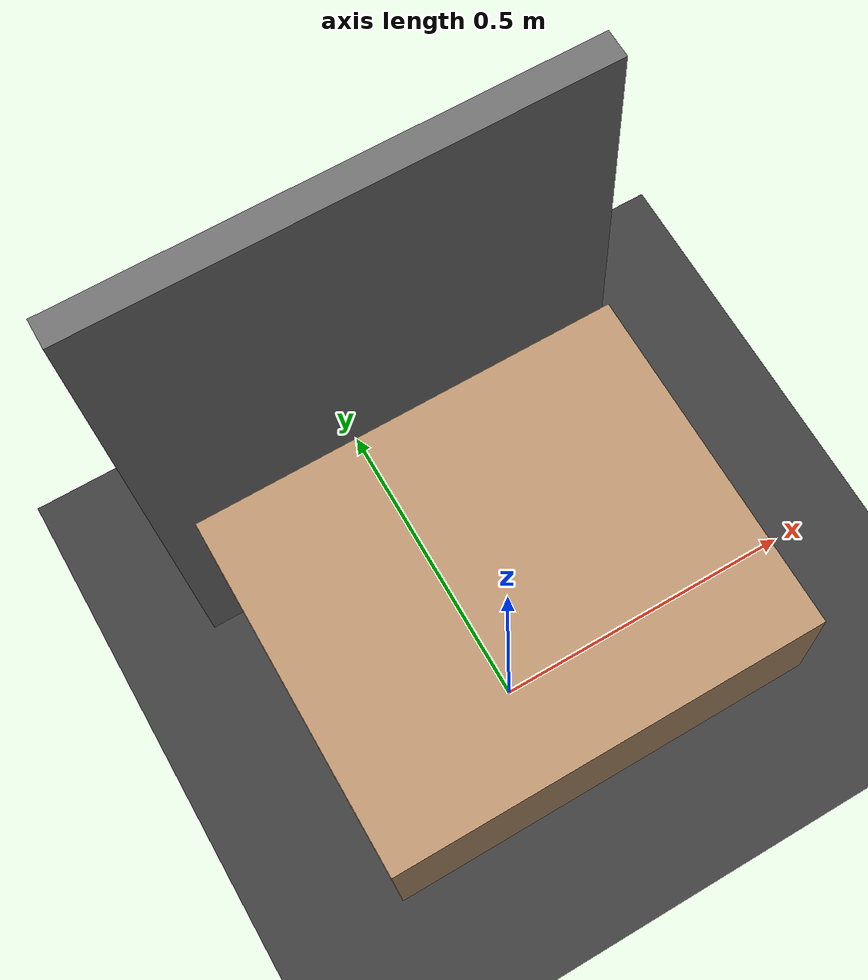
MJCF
<mujoco model="prismatic_drawer">
  <compiler angle="radian"/>
  <option timestep="0.002" gravity="0 0 -9.81"/>
  <asset>
    <texture type="skybox" builtin="gradient" rgb1="0.8 0.9 1" rgb2="0.3 0.4 0.5" width="256" height="256"/>
    <texture name="grid" type="2d" builtin="checker" rgb1="0.2 0.2 0.2" rgb2="0.3 0.3 0.3" width="300" height="300"/>
    <material name="grid" texture="grid" texrepeat="5 5" reflectance="0.1"/>
  </asset>
  <worldbody>
    <light pos="0 -1 3" dir="0 0.3 -1" diffuse="1 1 1"/>
    <geom name="floor" type="plane" size="3 3 0.1" material="grid"/>
    <!-- Cabinet carcass: visual only, no collision. -->
    <geom name="carcass" type="box" pos="0 0.35 0.5" size="0.35 0.02 0.5"
          rgba="0.45 0.45 0.45 1" contype="0" conaffinity="0"/>
    <!-- Drawer body: origin at the closed position; slides along +x. -->
    <body name="door" pos="0 0 0.5">
      <joint name="hinge" type="slide" pos="0 0 0" axis="1 0 0"
             limited="true" range="0 0.5" damping="4.0" frictionloss="8.0"/>
      <geom name="panel" type="box" pos="0 0 0" size="0.30 0.25 0.10"
            density="500" rgba="0.75 0.6 0.45 1" contype="0" conaffinity="0"/>
      <site name="handle" pos="0.31 0 0" size="0.02" rgba="1 0 0 1"/>
    </body>
    <camera name="view" pos="1.6 -1.8 1.3" xyaxes="1 0.9 0 0 0.4 1"/>
  </worldbody>
</mujoco>
